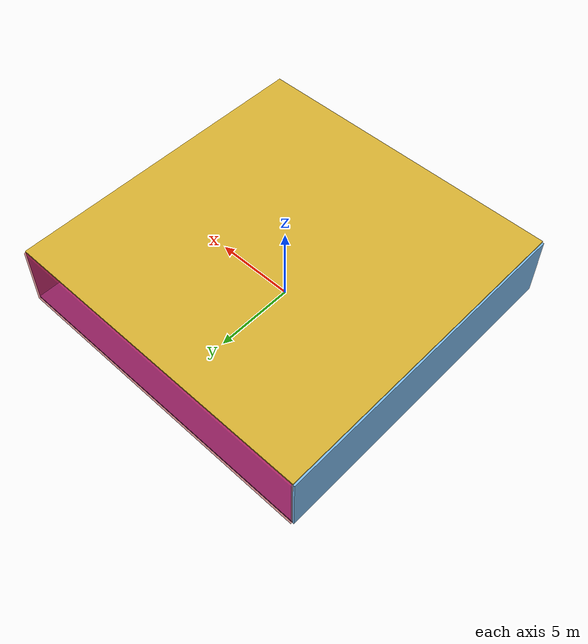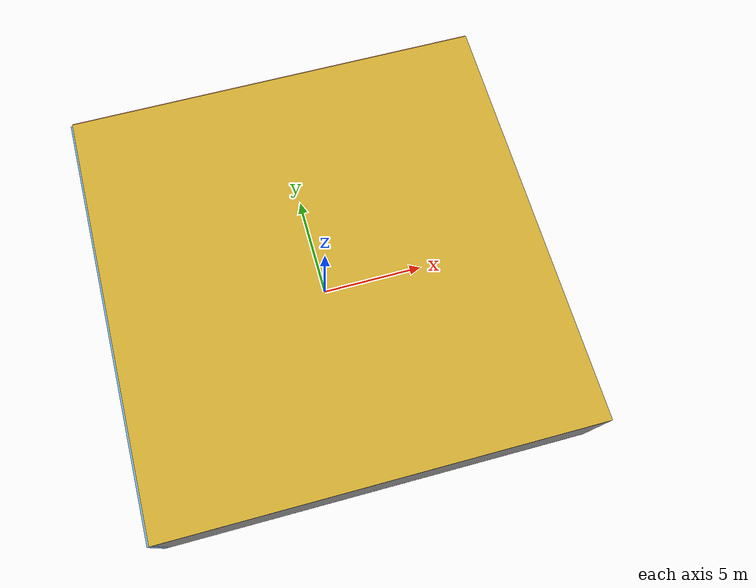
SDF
<sdf version="1.4">
 <world name="default">
  <physics type="ode">
   <max_step_size>0.001</max_step_size>
   <real_time_factor>1</real_time_factor>
   <real_time_update_rate>1000</real_time_update_rate>
   <gravity>0 0 -9.8</gravity>
  </physics>
  <scene><ambient>0.4 0.4 0.4 1</ambient><background>0.7 0.7 0.7 1</background><shadows>1</shadows></scene>
  <model name="Surrounding">
   <static>1</static>
   <link name="Ceiling">
    <collision name="Ceiling_Collision"><geometry><box><size>20 20 0.1</size></box></geometry></collision>
    <visual name="Ceiling_Visual">
     <geometry><box><size>20 20 0.1</size></box></geometry>
     <material>
      <script><uri>file://media/materials/scripts/gazebo.material</uri><name>Gazebo/Gold</name></script>
     </material>
    </visual>
    <pose>0 0 4.05 0 0 0</pose>
   </link>
   <link name="Wall_South">
    <collision name="Wall_South_Collision">
     <geometry><box><size>20 0 4</size></box></geometry>
     <pose>0 0 2 0 -0 0</pose>
    </collision>
    <visual name="Wall_South_Visual">
     <pose>0 0 2 0 -0 0</pose>
     <geometry><box><size>20 0 4</size></box></geometry>
     <material>
      <script><uri>file://media/materials/scripts/gazebo.material</uri><name>Gazebo/GreyGradientSky</name></script>
     </material>
    </visual>
    <velocity_decay><linear>0</linear><angular>0</angular></velocity_decay>
    <pose>0 -10 0 0 -0 0</pose>
   </link>
   <link name="Wall_East">
    <collision name="Wall_21_Collision">
     <geometry><box><size>20 0 4</size></box></geometry>
     <pose>0 0 2 0 -0 0</pose>
    </collision>
    <visual name="Wall_21_Visual">
     <pose>0 0 2 0 -0 0</pose>
     <geometry><box><size>20 0 4</size></box></geometry>
     <material>
      <script><uri>file://media/materials/scripts/gazebo.material</uri><name>Gazebo/Purple</name></script>
     </material>
    </visual>
    <velocity_decay><linear>0</linear><angular>0</angular></velocity_decay>
    <pose>10 0 0 0 -0 1.5708</pose>
   </link>
   <link name="Wall_North">
    <collision name="Wall_22_Collision">
     <geometry><box><size>20 0.2 4</size></box></geometry>
     <pose>0 0 2 0 -0 0</pose>
    </collision>
    <visual name="Wall_22_Visual">
     <pose>0 0 2 0 -0 0</pose>
     <geometry><box><size>20 0.2 4</size></box></geometry>
     <material>
      <script><uri>file://media/materials/scripts/gazebo.material</uri><name>Gazebo/RedTransparent</name></script>
     </material>
    </visual>
    <velocity_decay><linear>0</linear><angular>0</angular></velocity_decay>
    <pose>0 10 0 0 -0 0</pose>
   </link>
   <link name="Wall_West">
    <collision name="Wall_23_Collision">
     <geometry><box><size>20 0.2 4</size></box></geometry>
     <pose>0 0 2 0 -0 0</pose>
    </collision>
    <visual name="Wall_23_Visual">
     <pose>0 0 2 0 -0 0</pose>
     <geometry><box><size>20 0.2 4</size></box></geometry>
     <material>
      <script><uri>file://media/materials/scripts/gazebo.material</uri><name>Gazebo/SkyBlue</name></script>
     </material>
    </visual>
    <velocity_decay><linear>0</linear><angular>0</angular></velocity_decay>
    <pose>-10 0 0 0 0 -1.5708</pose>
   </link>
   <link name="Ground_link">
    <collision name="collision">
     <pose>0 0 .05 0 -0 0</pose>
     <geometry><box><size>20 20 0.1</size></box></geometry>
    </collision>
    <visual name="visual">
     <pose>0 0 .05 0 -0 0</pose>
     <geometry><box><size>20 20 0.1</size></box></geometry>
     <material>
      <script><uri>file://media/materials/scripts/gazebo.material</uri><name>Gazebo/PurpleGlow</name></script>
     </material>
    </visual>
   </link>
   <static>1</static>
  </model>
  <spherical_coordinates>
   <surface_model>EARTH_WGS84</surface_model>
   <latitude_deg>0</latitude_deg>
   <longitude_deg>0</longitude_deg>
   <elevation>0</elevation>
   <heading_deg>0</heading_deg>
  </spherical_coordinates>
  <light name="lightball_0" type="diffuse">
   <diffuse>0.8 0.8 0.8 1</diffuse>
   <specular>0.2 0.2 0.2 1</specular>
   <attenuation>
    <range>100</range>
    <constant>0.7</constant>
    <linear>0.01</linear>
    <quadratic>0.001</quadratic>
   </attenuation>
   <direction>-0.5 0.1 -0.9</direction>
   <pose>1.65771078585 9.59248016452 1.56026085572 0 0 0</pose>
  </light>
  <light name="lightball_1" type="diffuse">
   <diffuse>0.8 0.8 0.8 1</diffuse>
   <specular>0.2 0.2 0.2 1</specular>
   <attenuation>
    <range>100</range>
    <constant>0.7</constant>
    <linear>0.01</linear>
    <quadratic>0.001</quadratic>
   </attenuation>
   <direction>-0.5 0.1 -0.9</direction>
   <pose>9.98660187672 -7.58425451776 2.31433731954 0 0 0</pose>
  </light>
  <light name="lightball_2" type="diffuse">
   <diffuse>0.8 0.8 0.8 1</diffuse>
   <specular>0.2 0.2 0.2 1</specular>
   <attenuation>
    <range>100</range>
    <constant>0.7</constant>
    <linear>0.01</linear>
    <quadratic>0.001</quadratic>
   </attenuation>
   <direction>-0.5 0.1 -0.9</direction>
   <pose>2.34049479038 7.69721240742 3.11269184147 0 0 0</pose>
  </light>
  <light name="lightball_3" type="diffuse">
   <diffuse>0.8 0.8 0.8 1</diffuse>
   <specular>0.2 0.2 0.2 1</specular>
   <attenuation>
    <range>100</range>
    <constant>0.7</constant>
    <linear>0.01</linear>
    <quadratic>0.001</quadratic>
   </attenuation>
   <direction>-0.5 0.1 -0.9</direction>
   <pose>-7.39644019535 8.9419526699 3.63906509396 0 0 0</pose>
  </light>
  <light name="lightball_4" type="diffuse">
   <diffuse>0.8 0.8 0.8 1</diffuse>
   <specular>0.2 0.2 0.2 1</specular>
   <attenuation>
    <range>100</range>
    <constant>0.7</constant>
    <linear>0.01</linear>
    <quadratic>0.001</quadratic>
   </attenuation>
   <direction>-0.5 0.1 -0.9</direction>
   <pose>4.20027727598 -9.11397872269 1.91219892001 0 0 0</pose>
  </light>
  <light name="lightball_5" type="diffuse">
   <diffuse>0.8 0.8 0.8 1</diffuse>
   <specular>0.2 0.2 0.2 1</specular>
   <attenuation>
    <range>100</range>
    <constant>0.7</constant>
    <linear>0.01</linear>
    <quadratic>0.001</quadratic>
   </attenuation>
   <direction>-0.5 0.1 -0.9</direction>
   <pose>4.23074313432 -9.45574784559 1.05651077884 0 0 0</pose>
  </light>
  <light name="lightball_6" type="diffuse">
   <diffuse>0.8 0.8 0.8 1</diffuse>
   <specular>0.2 0.2 0.2 1</specular>
   <attenuation>
    <range>100</range>
    <constant>0.7</constant>
    <linear>0.01</linear>
    <quadratic>0.001</quadratic>
   </attenuation>
   <direction>-0.5 0.1 -0.9</direction>
   <pose>0.753104998366 -1.20017689856 2.74546133952 0 0 0</pose>
  </light>
  <light name="lightball_7" type="diffuse">
   <diffuse>0.8 0.8 0.8 1</diffuse>
   <specular>0.2 0.2 0.2 1</specular>
   <attenuation>
    <range>100</range>
    <constant>0.7</constant>
    <linear>0.01</linear>
    <quadratic>0.001</quadratic>
   </attenuation>
   <direction>-0.5 0.1 -0.9</direction>
   <pose>-8.06135687862 -8.5969964183 1.25381962995 0 0 0</pose>
  </light>
  <light name="lightball_8" type="diffuse">
   <diffuse>0.8 0.8 0.8 1</diffuse>
   <specular>0.2 0.2 0.2 1</specular>
   <attenuation>
    <range>100</range>
    <constant>0.7</constant>
    <linear>0.01</linear>
    <quadratic>0.001</quadratic>
   </attenuation>
   <direction>-0.5 0.1 -0.9</direction>
   <pose>8.66561136154 -4.22112034022 3.30900803051 0 0 0</pose>
  </light>
  <light name="lightball_9" type="diffuse">
   <diffuse>0.8 0.8 0.8 1</diffuse>
   <specular>0.2 0.2 0.2 1</specular>
   <attenuation>
    <range>100</range>
    <constant>0.7</constant>
    <linear>0.01</linear>
    <quadratic>0.001</quadratic>
   </attenuation>
   <direction>-0.5 0.1 -0.9</direction>
   <pose>-6.91968003654 -0.974489573998 0.736561868841 0 0 0</pose>
  </light>
  <light name="lightball_10" type="diffuse">
   <diffuse>0.8 0.8 0.8 1</diffuse>
   <specular>0.2 0.2 0.2 1</specular>
   <attenuation>
    <range>100</range>
    <constant>0.7</constant>
    <linear>0.01</linear>
    <quadratic>0.001</quadratic>
   </attenuation>
   <direction>-0.5 0.1 -0.9</direction>
   <pose>4.46731007629 3.44712635178 1.96429902875 0 0 0</pose>
  </light>
  <include>
   <uri>model://construction_cone</uri>
   <pose>-7.97800364925 2.06495055067 0 0 0 1.08686778118</pose>
  </include>
  <include>
   <uri>model://robocup_3Dsim_goal</uri>
   <pose>2.26936429146 -1.619991748 0 0 0 3.01600120928</pose>
  </include>
  <include>
   <uri>model://construction_cone</uri>
   <pose>4.87575554744 -6.7872546286 0 0 0 2.65652008667</pose>
  </include>
  <include><uri>model://cabinet</uri><pose>3.74813511245 -4.96098979757 0 0 0 2.35543747472</pose></include>
  <include><uri>model://table</uri><pose>4.99991274332 -1.70623611478 0 0 0 0.280838894153</pose></include>
 </world>
</sdf>

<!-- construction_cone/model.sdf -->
<sdf version="1.5">
  <model name="Construction Cone">
    <link name="link">
      <collision name="collision">
        <geometry>
          <mesh>
            <scale>10 10 10</scale>
            <uri>file://isr-testbed/construction_cone/meshes/construction_cone.dae</uri>
          </mesh>
        </geometry>
      </collision>
      <visual name="visual">
        <geometry>
          <mesh>
            <scale>10 10 10</scale>
            <uri>file://isr-testbed/construction_cone/meshes/construction_cone.dae</uri>
          </mesh>
        </geometry>
      </visual>
    </link>
  </model>
</sdf>

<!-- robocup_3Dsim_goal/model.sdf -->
<sdf version="1.5">
  <model name="robocup_3d_goal">
    <static>true</static>
    <link name="left_post">
      <pose>0 1.05 0.45 0 0 0</pose>
      <collision name="collision">
        <geometry>
          <cylinder>
            <radius>0.05</radius>
            <length>0.9</length>
          </cylinder>
        </geometry>
      </collision>
      <visual name="visual">
        <geometry>
          <cylinder>
            <radius>0.05</radius>
            <length>0.9</length>
          </cylinder>
        </geometry>
        <material>
          <script>
            <uri>file://media/materials/scripts/gazebo.material</uri>
            <name>Gazebo/ZincYellow</name>
          </script>
        </material>
      </visual>
    </link>
    <link name="left_support_horiz_lower">
      <pose>0.30 1.05 0.01 0 0 0</pose>
      <collision name="collision">
        <geometry>
          <box>
            <size>0.50 0.02 0.02</size>
          </box>
        </geometry>
      </collision>
      <visual name="visual">
        <geometry>
          <box>
            <size>0.50 0.02 0.02</size>
          </box>
        </geometry>
        <material>
          <script>
            <uri>file://media/materials/scripts/gazebo.material</uri>
            <name>Gazebo/White</name>
          </script>
        </material>
      </visual>
    </link>
    <link name="left_support_horiz_upper">
      <pose>0.30 1.05 0.79 0 0 0</pose>
      <collision name="collision">
        <geometry>
          <box>
            <size>0.50 0.02 0.02</size>
          </box>
        </geometry>
      </collision>
      <visual name="visual">
        <geometry>
          <box>
            <size>0.50 0.02 0.02</size>
          </box>
        </geometry>
        <material>
          <script>
            <uri>file://media/materials/scripts/gazebo.material</uri>
            <name>Gazebo/White</name>
          </script>
        </material>
      </visual>
    </link>
    <link name="left_support_vertical">
      <pose>0.56 1.05 0.4 0 1.5708 0</pose>
      <collision name="collision">
        <geometry>
          <box>
            <size>0.80 0.02 0.02</size>
          </box>
        </geometry>
      </collision>
      <visual name="visual">
        <geometry>
          <box>
            <size>0.80 0.02 0.02</size>
          </box>
        </geometry>
        <material>
          <script>
            <uri>file://media/materials/scripts/gazebo.material</uri>
            <name>Gazebo/White</name>
          </script>
        </material>
      </visual>
    </link>
    <link name="right_support_horiz_lower">
      <pose>0.30 -1.05 0.01 0 0 0</pose>
      <collision name="collision">
        <geometry>
          <box>
            <size>0.50 0.02 0.02</size>
          </box>
        </geometry>
      </collision>
      <visual name="visual">
        <geometry>
          <box>
            <size>0.50 0.02 0.02</size>
          </box>
        </geometry>
        <material>
          <script>
            <uri>file://media/materials/scripts/gazebo.material</uri>
            <name>Gazebo/White</name>
          </script>
        </material>
      </visual>
    </link>
    <link name="right_support_horiz_upper">
      <pose>0.30 -1.05 0.79 0 0 0</pose>
      <collision name="collision">
        <geometry>
          <box>
            <size>0.50 0.02 0.02</size>
          </box>
        </geometry>
      </collision>
      <visual name="visual">
        <geometry>
          <box>
            <size>0.50 0.02 0.02</size>
          </box>
        </geometry>
        <material>
          <script>
            <uri>file://media/materials/scripts/gazebo.material</uri>
            <name>Gazebo/White</name>
          </script>
        </material>
      </visual>
    </link>
    <link name="right_support_vertical">
      <pose>0.56 -1.05 0.4 0 1.5708 0</pose>
      <collision name="collision">
        <geometry>
          <box>
            <size>0.80 0.02 0.02</size>
          </box>
        </geometry>
      </collision>
      <visual name="visual">
        <geometry>
          <box>
            <size>0.80 0.02 0.02</size>
          </box>
        </geometry>
        <material>
          <script>
            <uri>file://media/materials/scripts/gazebo.material</uri>
            <name>Gazebo/White</name>
          </script>
        </material>
      </visual>
    </link>
    <link name="center_support_horiz_lower">
      <pose>0.56 0 0.01 0 1.5708 0</pose>
      <collision name="collision">
        <geometry>
          <box>
            <size>0.02 2.08 0.02</size>
          </box>
        </geometry>
      </collision>
      <visual name="visual">
        <geometry>
          <box>
            <size>0.02 2.08 0.02</size>
          </box>
        </geometry>
        <material>
          <script>
            <uri>file://media/materials/scripts/gazebo.material</uri>
            <name>Gazebo/White</name>
          </script>
        </material>
      </visual>
    </link>
    <link name="center_support_horiz_upper">
      <pose>0.56 0 0.79 0 1.5708 0</pose>
      <collision name="collision">
        <geometry>
          <box>
            <size>0.02 2.08 0.02</size>
          </box>
        </geometry>
      </collision>
      <visual name="visual">
        <geometry>
          <box>
            <size>0.02 2.08 0.02</size>
          </box>
        </geometry>
        <material>
          <script>
            <uri>file://media/materials/scripts/gazebo.material</uri>
            <name>Gazebo/White</name>
          </script>
        </material>
      </visual>
    </link>
    <link name="right_post">
      <pose>0 -1.05 0.45 0 0 0</pose>
      <collision name="collision">
        <geometry>
          <cylinder>
            <radius>0.05</radius>
            <length>0.9</length>
          </cylinder>
        </geometry>
      </collision>
      <visual name="visual">
        <geometry>
          <cylinder>
            <radius>0.05</radius>
            <length>0.9</length>
          </cylinder>
        </geometry>
        <material>
          <script>
            <uri>file://media/materials/scripts/gazebo.material</uri>
            <name>Gazebo/ZincYellow</name>
          </script>
        </material>
      </visual>
    </link>
    <link name="crossbar">
      <pose>0 0 0.85 1.57 1.57 0</pose>
      <collision name="collision">
        <geometry>
          <cylinder>
            <radius>0.05</radius>
            <length>2.0</length>
          </cylinder>
        </geometry>
      </collision>
      <visual name="visual">
        <geometry>
          <cylinder>
            <radius>0.05</radius>
            <length>2.0</length>
          </cylinder>
        </geometry>
        <material>
          <script>
            <uri>file://media/materials/scripts/gazebo.material</uri>
            <name>Gazebo/ZincYellow</name>
          </script>
        </material>
      </visual>
    </link>
    <link name="center_net">
      <pose>0.56 0 0.40 0 0 0</pose>
      <collision name="collision">
        <geometry>
          <box>
            <size>0.01 2.1 0.80</size>
          </box>
        </geometry>
      </collision>
      <visual name="visual">
        <geometry>
          <box>
            <size>0.01 2.1 0.80</size>
          </box>
        </geometry>
        <material>
          <script>
            <uri>model://../model_source/models/robocup09_spl_field/materials/scripts/</uri>
            <uri>model://../model_source/models/robocup09_spl_field/materials/textures/</uri>
            <name>RoboCup/Net</name>
          </script>
        </material>
      </visual>
    </link>
    <link name="left_net">
      <pose>0.30 1.05 0.40 0 0 0</pose>
      <collision name="collision">
        <geometry>
          <box>
            <size>0.50 0.01 0.76</size>
          </box>
        </geometry>
      </collision>
      <visual name="visual">
        <geometry>
          <box>
            <size>0.50 0.01 0.76</size>
          </box>
        </geometry>
        <material>
          <script>
            <uri>model://../model_source/models/robocup09_spl_field/materials/scripts/</uri>
            <uri>model://../model_source/models/robocup09_spl_field/materials/textures/</uri>
            <name>RoboCup/Net</name>
          </script>
        </material>
      </visual>
    </link>
    <link name="right_net">
      <pose>0.30 -1.05 0.40 0 0 0</pose>
      <collision name="collision">
        <geometry>
          <box>
            <size>0.50 0.01 0.76</size>
          </box>
        </geometry>
      </collision>
      <visual name="visual">
        <geometry>
          <box>
            <size>0.50 0.01 0.76</size>
          </box>
        </geometry>
        <material>
          <script>
            <uri>model://../model_source/models/robocup09_spl_field/materials/scripts/</uri>
            <uri>model://../model_source/models/robocup09_spl_field/materials/textures/</uri>
            <name>RoboCup/Net</name>
          </script>
        </material>
      </visual>
    </link>
  </model>
</sdf>

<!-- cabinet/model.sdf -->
<sdf version="1.5">
  <model name="cabinet">
    <static>true</static>
    <link name="cabinet_bottom_plate">
      <inertial>
        <pose>0 0 -1 0 0 0</pose>
        <inertia>
          <ixx>2.050000</ixx>
          <ixy>0</ixy>
          <ixz>0</ixz>
          <iyy>2.050000</iyy>
          <iyz>0</iyz>
          <izz>2.050000</izz>
        </inertia>
        <mass>25.000000</mass>
      </inertial>
      <collision name="cabinet_bottom_plate_geom">
        <pose>0 0 0.010000 0 0 0</pose>
        <geometry>
          <box>
            <size>0.450000 0.450000 0.020000</size>
          </box>
        </geometry>
      </collision>
      <visual name="cabinet_bottom_plate_geom_visual">
        <pose>0 0 0.010000 0 0 0</pose>
        <geometry>
          <box>
            <size>0.450000 0.450000 0.020000</size>
          </box>
        </geometry>
        <material>
          <script>
            <uri>model://media/materials/scripts/gazebo.material</uri>
            <name>Gazebo/Wood</name>
          </script>
        </material>
      </visual>
      <collision name="cabinet_bottom_plate_geom_cabinet_back_plate">
        <pose>0.235000 0 0.510000 0 0 0</pose>
        <geometry>
          <box>
            <size>0.020000 0.450000 1.020000</size>
          </box>
        </geometry>
      </collision>
      <visual name="cabinet_bottom_plate_geom_cabinet_back_plate_visual">
        <pose>0.235000 0 0.510000 0 0 0</pose>
        <geometry>
          <box>
            <size>0.020000 0.450000 1.020000</size>
          </box>
        </geometry>
        <material>
          <script>
            <uri>model://media/materials/scripts/gazebo.material</uri>
            <name>Gazebo/Wood</name>
          </script>
        </material>
      </visual>
      <collision name="cabinet_bottom_plate_geom_cabinet_left_plate">
        <pose>0 0.235000 0.510000 0 0 0</pose>
        <geometry>
          <box>
            <size>0.450000 0.020000 1.020000</size>
          </box>
        </geometry>
      </collision>
      <visual name="cabinet_bottom_plate_geom_cabinet_left_plate_visual">
        <pose>0 0.235000 0.510000 0 0 0</pose>
        <geometry>
          <box>
            <size>0.450000 0.020000 1.020000</size>
          </box>
        </geometry>
        <material>
          <script>
            <uri>model://media/materials/scripts/gazebo.material</uri>
            <name>Gazebo/Wood</name>
          </script>
        </material>
      </visual>
      <collision name="cabinet_bottom_plate_geom_cabinet_middle_plate">
        <pose>0 0 0.510000 0 0 0</pose>
        <geometry>
          <box>
            <size>0.450000 0.450000 0.020000</size>
          </box>
        </geometry>
      </collision>
      <visual name="cabinet_bottom_plate_geom_cabinet_middle_plate_visual">
        <pose>0 0 0.510000 0 0 0</pose>
        <geometry>
          <box>
            <size>0.450000 0.450000 0.020000</size>
          </box>
        </geometry>
        <material>
          <script>
            <uri>model://media/materials/scripts/gazebo.material</uri>
            <name>Gazebo/Wood</name>
          </script>
        </material>
      </visual>
      <collision name="cabinet_bottom_plate_geom_cabinet_right_plate">
        <pose>0 -0.235000 0.510000 0 0 0</pose>
        <geometry>
          <box>
            <size>0.450000 0.020000 1.020000</size>
          </box>
        </geometry>
      </collision>
      <visual name="cabinet_bottom_plate_geom_cabinet_right_plate_visual">
        <pose>0 -0.235000 0.510000 0 0 0</pose>
        <geometry>
          <box>
            <size>0.450000 0.020000 1.020000</size>
          </box>
        </geometry>
        <material>
          <script>
            <uri>model://media/materials/scripts/gazebo.material</uri>
            <name>Gazebo/Wood</name>
          </script>
        </material>
      </visual>
      <collision name="cabinet_bottom_plate_geom_cabinet_top_plate">
        <pose>0 0 1.010000 0 0 0</pose>
        <geometry>
          <box>
            <size>0.450000 0.450000 0.020000</size>
          </box>
        </geometry>
      </collision>
      <visual name="cabinet_bottom_plate_geom_cabinet_top_plate_visual">
        <pose>0 0 1.010000 0 0 0</pose>
        <geometry>
          <box>
            <size>0.450000 0.450000 0.020000</size>
          </box>
        </geometry>
        <material>
          <script>
            <uri>model://media/materials/scripts/gazebo.material</uri>
            <name>Gazebo/Wood</name>
          </script>
        </material>
      </visual>
    </link>
  </model>
</sdf>

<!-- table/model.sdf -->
<sdf version="1.5">
  <model name="table">
    <static>true</static>
    <link name="link">
      <collision name="surface">
        <pose>0 0 1.0 0 0 0</pose>
        <geometry>
          <box>
            <size>1.5 0.8 0.03</size>
          </box>
        </geometry>
        <surface>
          <friction>
            <ode>
              <mu>0.6</mu>
              <mu2>0.6</mu2>
            </ode>
          </friction>
        </surface>
      </collision>
      <visual name="visual1">
        <pose>0 0 1.0 0 0 0</pose>
        <geometry>
          <box>
            <size>1.5 0.8 0.03</size>
          </box>
        </geometry>
        <material>
          <script>
            <uri>model://media/materials/scripts/gazebo.material</uri>
            <name>Gazebo/Wood</name>
          </script>
        </material>
      </visual>
      <collision name="front_left_leg">
        <pose>0.68 0.38 0.5 0 0 0</pose>
        <geometry>
          <cylinder>
            <radius>0.02</radius>
            <length>1.0</length>
          </cylinder>
        </geometry>
      </collision>
      <visual name="front_left_leg">
        <pose>0.68 0.38 0.5 0 0 0</pose>
        <geometry>
          <cylinder>
            <radius>0.02</radius>
            <length>1.0</length>
          </cylinder>
        </geometry>
        <material>
          <script>
            <uri>model://media/materials/scripts/gazebo.material</uri>
            <name>Gazebo/Grey</name>
          </script>
        </material>
      </visual>
      <collision name="front_right_leg">
        <pose>0.68 -0.38 0.5 0 0 0</pose>
        <geometry>
          <cylinder>
            <radius>0.02</radius>
            <length>1.0</length>
          </cylinder>
        </geometry>
      </collision>
      <visual name="front_right_leg">
        <pose>0.68 -0.38 0.5 0 0 0</pose>
        <geometry>
          <cylinder>
            <radius>0.02</radius>
            <length>1.0</length>
          </cylinder>
        </geometry>
        <material>
          <script>
            <uri>model://media/materials/scripts/gazebo.material</uri>
            <name>Gazebo/Grey</name>
          </script>
        </material>
      </visual>
      <collision name="back_right_leg">
        <pose>-0.68 -0.38 0.5 0 0 0</pose>
        <geometry>
          <cylinder>
            <radius>0.02</radius>
            <length>1.0</length>
          </cylinder>
        </geometry>
      </collision>
      <visual name="back_right_leg">
        <pose>-0.68 -0.38 0.5 0 0 0</pose>
        <geometry>
          <cylinder>
            <radius>0.02</radius>
            <length>1.0</length>
          </cylinder>
        </geometry>
        <material>
          <script>
            <uri>model://media/materials/scripts/gazebo.material</uri>
            <name>Gazebo/Grey</name>
          </script>
        </material>
      </visual>
      <collision name="back_left_leg">
        <pose>-0.68 0.38 0.5 0 0 0</pose>
        <geometry>
          <cylinder>
            <radius>0.02</radius>
            <length>1.0</length>
          </cylinder>
        </geometry>
      </collision>
      <visual name="back_left_leg">
        <pose>-0.68 0.38 0.5 0 0 0</pose>
        <geometry>
          <cylinder>
            <radius>0.02</radius>
            <length>1.0</length>
          </cylinder>
        </geometry>
        <material>
          <script>
            <uri>model://media/materials/scripts/gazebo.material</uri>
            <name>Gazebo/Grey</name>
          </script>
        </material>
      </visual>
    </link>
  </model>
</sdf>
